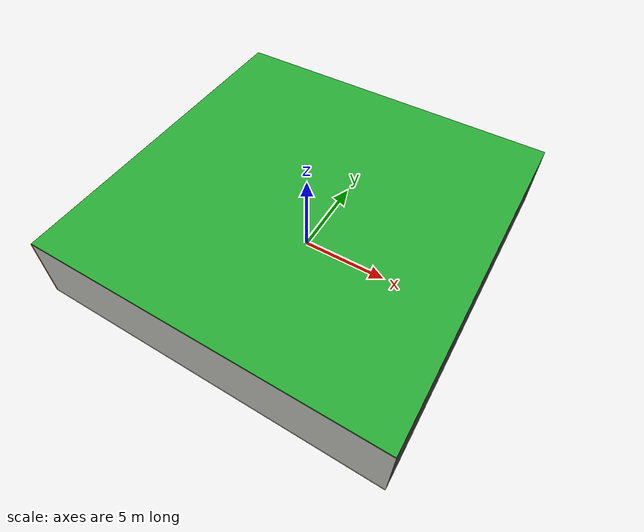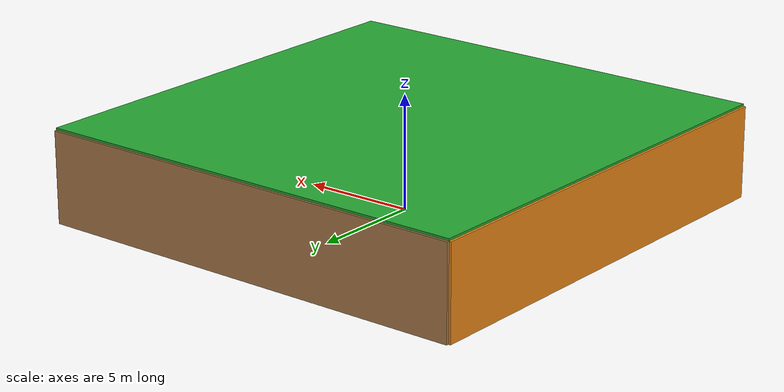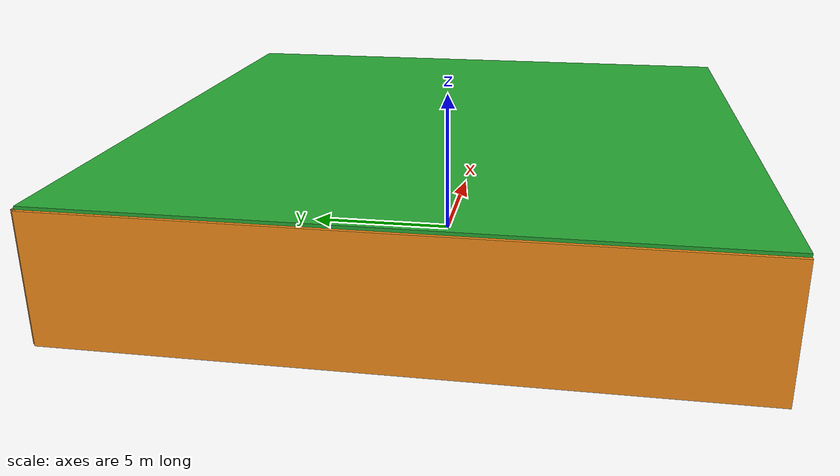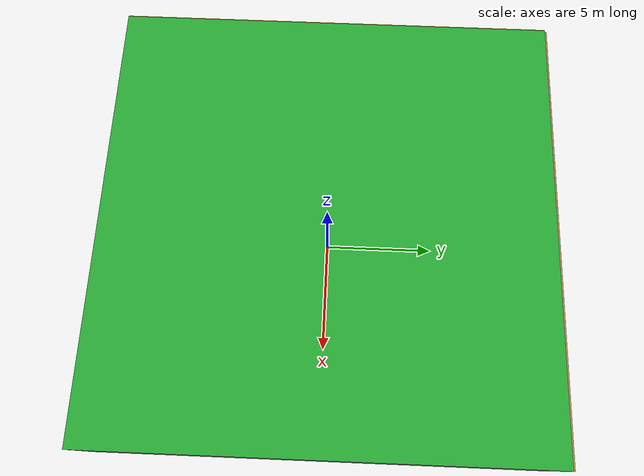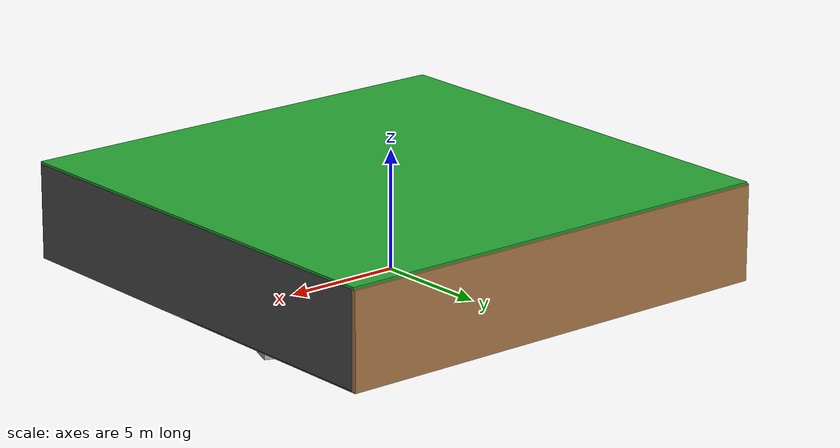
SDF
<sdf version="1.4">
 <world name="default">
  <physics type="ode">
   <max_step_size>0.001</max_step_size>
   <real_time_factor>1</real_time_factor>
   <real_time_update_rate>1000</real_time_update_rate>
   <gravity>0 0 -9.8</gravity>
  </physics>
  <scene><ambient>0.4 0.4 0.4 1</ambient><background>0.7 0.7 0.7 1</background><shadows>1</shadows></scene>
  <model name="Surrounding">
   <static>1</static>
   <link name="Ceiling">
    <collision name="Ceiling_Collision"><geometry><box><size>20 20 0.1</size></box></geometry></collision>
    <visual name="Ceiling_Visual">
     <geometry><box><size>20 20 0.1</size></box></geometry>
     <material>
      <script><uri>file://media/materials/scripts/gazebo.material</uri><name>Gazebo/GreenGlow</name></script>
     </material>
    </visual>
    <pose>0 0 4.05 0 0 0</pose>
   </link>
   <link name="Wall_South">
    <collision name="Wall_South_Collision">
     <geometry><box><size>20 0 4</size></box></geometry>
     <pose>0 0 2 0 -0 0</pose>
    </collision>
    <visual name="Wall_South_Visual">
     <pose>0 0 2 0 -0 0</pose>
     <geometry><box><size>20 0 4</size></box></geometry>
     <material>
      <script><uri>file://media/materials/scripts/gazebo.material</uri><name>Gazebo/CeilingTiled</name></script>
     </material>
    </visual>
    <velocity_decay><linear>0</linear><angular>0</angular></velocity_decay>
    <pose>0 -10 0 0 -0 0</pose>
   </link>
   <link name="Wall_East">
    <collision name="Wall_21_Collision">
     <geometry><box><size>20 0 4</size></box></geometry>
     <pose>0 0 2 0 -0 0</pose>
    </collision>
    <visual name="Wall_21_Visual">
     <pose>0 0 2 0 -0 0</pose>
     <geometry><box><size>20 0 4</size></box></geometry>
     <material>
      <script><uri>file://media/materials/scripts/gazebo.material</uri><name>Gazebo/Road</name></script>
     </material>
    </visual>
    <velocity_decay><linear>0</linear><angular>0</angular></velocity_decay>
    <pose>10 0 0 0 -0 1.5708</pose>
   </link>
   <link name="Wall_North">
    <collision name="Wall_22_Collision">
     <geometry><box><size>20 0.2 4</size></box></geometry>
     <pose>0 0 2 0 -0 0</pose>
    </collision>
    <visual name="Wall_22_Visual">
     <pose>0 0 2 0 -0 0</pose>
     <geometry><box><size>20 0.2 4</size></box></geometry>
     <material>
      <script><uri>file://media/materials/scripts/gazebo.material</uri><name>Gazebo/WoodPallet</name></script>
     </material>
    </visual>
    <velocity_decay><linear>0</linear><angular>0</angular></velocity_decay>
    <pose>0 10 0 0 -0 0</pose>
   </link>
   <link name="Wall_West">
    <collision name="Wall_23_Collision">
     <geometry><box><size>20 0.2 4</size></box></geometry>
     <pose>0 0 2 0 -0 0</pose>
    </collision>
    <visual name="Wall_23_Visual">
     <pose>0 0 2 0 -0 0</pose>
     <geometry><box><size>20 0.2 4</size></box></geometry>
     <material>
      <script><uri>file://media/materials/scripts/gazebo.material</uri><name>Gazebo/Orange</name></script>
     </material>
    </visual>
    <velocity_decay><linear>0</linear><angular>0</angular></velocity_decay>
    <pose>-10 0 0 0 0 -1.5708</pose>
   </link>
   <link name="Ground_link">
    <collision name="collision">
     <pose>0 0 .05 0 -0 0</pose>
     <geometry><box><size>20 20 0.1</size></box></geometry>
    </collision>
    <visual name="visual">
     <pose>0 0 .05 0 -0 0</pose>
     <geometry><box><size>20 20 0.1</size></box></geometry>
     <material>
      <script><uri>file://media/materials/scripts/gazebo.material</uri><name>Gazebo/FlatBlack</name></script>
     </material>
    </visual>
   </link>
   <static>1</static>
  </model>
  <spherical_coordinates>
   <surface_model>EARTH_WGS84</surface_model>
   <latitude_deg>0</latitude_deg>
   <longitude_deg>0</longitude_deg>
   <elevation>0</elevation>
   <heading_deg>0</heading_deg>
  </spherical_coordinates>
  <light name="lightball_0" type="diffuse">
   <diffuse>0.8 0.8 0.8 1</diffuse>
   <specular>0.2 0.2 0.2 1</specular>
   <attenuation>
    <range>100</range>
    <constant>0.7</constant>
    <linear>0.01</linear>
    <quadratic>0.001</quadratic>
   </attenuation>
   <direction>-0.5 0.1 -0.9</direction>
   <pose>7.10441100045 8.45511533731 2.55093289825 0 0 0</pose>
  </light>
  <light name="lightball_1" type="diffuse">
   <diffuse>0.8 0.8 0.8 1</diffuse>
   <specular>0.2 0.2 0.2 1</specular>
   <attenuation>
    <range>100</range>
    <constant>0.7</constant>
    <linear>0.01</linear>
    <quadratic>0.001</quadratic>
   </attenuation>
   <direction>-0.5 0.1 -0.9</direction>
   <pose>5.89136797551 -1.19104381316 3.70082188202 0 0 0</pose>
  </light>
  <light name="lightball_2" type="diffuse">
   <diffuse>0.8 0.8 0.8 1</diffuse>
   <specular>0.2 0.2 0.2 1</specular>
   <attenuation>
    <range>100</range>
    <constant>0.7</constant>
    <linear>0.01</linear>
    <quadratic>0.001</quadratic>
   </attenuation>
   <direction>-0.5 0.1 -0.9</direction>
   <pose>-8.34110937953 -6.08091323969 1.89336852425 0 0 0</pose>
  </light>
  <light name="lightball_3" type="diffuse">
   <diffuse>0.8 0.8 0.8 1</diffuse>
   <specular>0.2 0.2 0.2 1</specular>
   <attenuation>
    <range>100</range>
    <constant>0.7</constant>
    <linear>0.01</linear>
    <quadratic>0.001</quadratic>
   </attenuation>
   <direction>-0.5 0.1 -0.9</direction>
   <pose>3.40712826576 2.36410393262 3.67691673831 0 0 0</pose>
  </light>
  <light name="lightball_4" type="diffuse">
   <diffuse>0.8 0.8 0.8 1</diffuse>
   <specular>0.2 0.2 0.2 1</specular>
   <attenuation>
    <range>100</range>
    <constant>0.7</constant>
    <linear>0.01</linear>
    <quadratic>0.001</quadratic>
   </attenuation>
   <direction>-0.5 0.1 -0.9</direction>
   <pose>1.19657197249 7.47247339856 0.547287005917 0 0 0</pose>
  </light>
  <light name="lightball_5" type="diffuse">
   <diffuse>0.8 0.8 0.8 1</diffuse>
   <specular>0.2 0.2 0.2 1</specular>
   <attenuation>
    <range>100</range>
    <constant>0.7</constant>
    <linear>0.01</linear>
    <quadratic>0.001</quadratic>
   </attenuation>
   <direction>-0.5 0.1 -0.9</direction>
   <pose>7.40875147786 8.36434833558 2.95930534745 0 0 0</pose>
  </light>
  <light name="lightball_6" type="diffuse">
   <diffuse>0.8 0.8 0.8 1</diffuse>
   <specular>0.2 0.2 0.2 1</specular>
   <attenuation>
    <range>100</range>
    <constant>0.7</constant>
    <linear>0.01</linear>
    <quadratic>0.001</quadratic>
   </attenuation>
   <direction>-0.5 0.1 -0.9</direction>
   <pose>9.23463635037 -9.32865494741 2.54124375304 0 0 0</pose>
  </light>
  <light name="lightball_7" type="diffuse">
   <diffuse>0.8 0.8 0.8 1</diffuse>
   <specular>0.2 0.2 0.2 1</specular>
   <attenuation>
    <range>100</range>
    <constant>0.7</constant>
    <linear>0.01</linear>
    <quadratic>0.001</quadratic>
   </attenuation>
   <direction>-0.5 0.1 -0.9</direction>
   <pose>-0.786305189285 -8.80445557308 0.623256483625 0 0 0</pose>
  </light>
  <light name="lightball_8" type="diffuse">
   <diffuse>0.8 0.8 0.8 1</diffuse>
   <specular>0.2 0.2 0.2 1</specular>
   <attenuation>
    <range>100</range>
    <constant>0.7</constant>
    <linear>0.01</linear>
    <quadratic>0.001</quadratic>
   </attenuation>
   <direction>-0.5 0.1 -0.9</direction>
   <pose>-5.37941928056 1.20386737908 2.10223907229 0 0 0</pose>
  </light>
  <light name="lightball_9" type="diffuse">
   <diffuse>0.8 0.8 0.8 1</diffuse>
   <specular>0.2 0.2 0.2 1</specular>
   <attenuation>
    <range>100</range>
    <constant>0.7</constant>
    <linear>0.01</linear>
    <quadratic>0.001</quadratic>
   </attenuation>
   <direction>-0.5 0.1 -0.9</direction>
   <pose>8.35695335625 2.2211120813 2.338716791 0 0 0</pose>
  </light>
  <light name="lightball_10" type="diffuse">
   <diffuse>0.8 0.8 0.8 1</diffuse>
   <specular>0.2 0.2 0.2 1</specular>
   <attenuation>
    <range>100</range>
    <constant>0.7</constant>
    <linear>0.01</linear>
    <quadratic>0.001</quadratic>
   </attenuation>
   <direction>-0.5 0.1 -0.9</direction>
   <pose>-0.330920466076 0.0974242265875 1.61388066779 0 0 0</pose>
  </light>
  <include>
   <uri>model://construction_cone</uri>
   <pose>-5.42476454268 8.62033507167 0 0 0 0.40537235495</pose>
  </include>
  <include><uri>model://cabinet</uri><pose>-1.20101431341 -1.85810341811 0 0 0 0.64573838881</pose></include>
  <include>
   <uri>model://construction_cone</uri>
   <pose>-2.29751486407 4.18244783968 0 0 0 0.835754402326</pose>
  </include>
  <include><uri>model://table</uri><pose>2.32146297147 -2.25285586774 0 0 0 0.951927723339</pose></include>
  <include><uri>model://cabinet</uri><pose>3.7601997842 -5.39536682649 0 0 0 1.08320581812</pose></include>
  <include>
   <uri>model://textured_shapes</uri>
   <pose>8.39394677694 2.36237133264 0 0 0 2.78595013781</pose>
  </include>
 </world>
</sdf>

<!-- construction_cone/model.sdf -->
<sdf version="1.5">
  <model name="Construction Cone">
    <link name="link">
      <collision name="collision">
        <geometry>
          <mesh>
            <scale>10 10 10</scale>
            <uri>file://isr-testbed/construction_cone/meshes/construction_cone.dae</uri>
          </mesh>
        </geometry>
      </collision>
      <visual name="visual">
        <geometry>
          <mesh>
            <scale>10 10 10</scale>
            <uri>file://isr-testbed/construction_cone/meshes/construction_cone.dae</uri>
          </mesh>
        </geometry>
      </visual>
    </link>
  </model>
</sdf>

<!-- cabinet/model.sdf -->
<sdf version="1.5">
  <model name="cabinet">
    <static>true</static>
    <link name="cabinet_bottom_plate">
      <inertial>
        <pose>0 0 -1 0 0 0</pose>
        <inertia>
          <ixx>2.050000</ixx>
          <ixy>0</ixy>
          <ixz>0</ixz>
          <iyy>2.050000</iyy>
          <iyz>0</iyz>
          <izz>2.050000</izz>
        </inertia>
        <mass>25.000000</mass>
      </inertial>
      <collision name="cabinet_bottom_plate_geom">
        <pose>0 0 0.010000 0 0 0</pose>
        <geometry>
          <box>
            <size>0.450000 0.450000 0.020000</size>
          </box>
        </geometry>
      </collision>
      <visual name="cabinet_bottom_plate_geom_visual">
        <pose>0 0 0.010000 0 0 0</pose>
        <geometry>
          <box>
            <size>0.450000 0.450000 0.020000</size>
          </box>
        </geometry>
        <material>
          <script>
            <uri>model://media/materials/scripts/gazebo.material</uri>
            <name>Gazebo/Wood</name>
          </script>
        </material>
      </visual>
      <collision name="cabinet_bottom_plate_geom_cabinet_back_plate">
        <pose>0.235000 0 0.510000 0 0 0</pose>
        <geometry>
          <box>
            <size>0.020000 0.450000 1.020000</size>
          </box>
        </geometry>
      </collision>
      <visual name="cabinet_bottom_plate_geom_cabinet_back_plate_visual">
        <pose>0.235000 0 0.510000 0 0 0</pose>
        <geometry>
          <box>
            <size>0.020000 0.450000 1.020000</size>
          </box>
        </geometry>
        <material>
          <script>
            <uri>model://media/materials/scripts/gazebo.material</uri>
            <name>Gazebo/Wood</name>
          </script>
        </material>
      </visual>
      <collision name="cabinet_bottom_plate_geom_cabinet_left_plate">
        <pose>0 0.235000 0.510000 0 0 0</pose>
        <geometry>
          <box>
            <size>0.450000 0.020000 1.020000</size>
          </box>
        </geometry>
      </collision>
      <visual name="cabinet_bottom_plate_geom_cabinet_left_plate_visual">
        <pose>0 0.235000 0.510000 0 0 0</pose>
        <geometry>
          <box>
            <size>0.450000 0.020000 1.020000</size>
          </box>
        </geometry>
        <material>
          <script>
            <uri>model://media/materials/scripts/gazebo.material</uri>
            <name>Gazebo/Wood</name>
          </script>
        </material>
      </visual>
      <collision name="cabinet_bottom_plate_geom_cabinet_middle_plate">
        <pose>0 0 0.510000 0 0 0</pose>
        <geometry>
          <box>
            <size>0.450000 0.450000 0.020000</size>
          </box>
        </geometry>
      </collision>
      <visual name="cabinet_bottom_plate_geom_cabinet_middle_plate_visual">
        <pose>0 0 0.510000 0 0 0</pose>
        <geometry>
          <box>
            <size>0.450000 0.450000 0.020000</size>
          </box>
        </geometry>
        <material>
          <script>
            <uri>model://media/materials/scripts/gazebo.material</uri>
            <name>Gazebo/Wood</name>
          </script>
        </material>
      </visual>
      <collision name="cabinet_bottom_plate_geom_cabinet_right_plate">
        <pose>0 -0.235000 0.510000 0 0 0</pose>
        <geometry>
          <box>
            <size>0.450000 0.020000 1.020000</size>
          </box>
        </geometry>
      </collision>
      <visual name="cabinet_bottom_plate_geom_cabinet_right_plate_visual">
        <pose>0 -0.235000 0.510000 0 0 0</pose>
        <geometry>
          <box>
            <size>0.450000 0.020000 1.020000</size>
          </box>
        </geometry>
        <material>
          <script>
            <uri>model://media/materials/scripts/gazebo.material</uri>
            <name>Gazebo/Wood</name>
          </script>
        </material>
      </visual>
      <collision name="cabinet_bottom_plate_geom_cabinet_top_plate">
        <pose>0 0 1.010000 0 0 0</pose>
        <geometry>
          <box>
            <size>0.450000 0.450000 0.020000</size>
          </box>
        </geometry>
      </collision>
      <visual name="cabinet_bottom_plate_geom_cabinet_top_plate_visual">
        <pose>0 0 1.010000 0 0 0</pose>
        <geometry>
          <box>
            <size>0.450000 0.450000 0.020000</size>
          </box>
        </geometry>
        <material>
          <script>
            <uri>model://media/materials/scripts/gazebo.material</uri>
            <name>Gazebo/Wood</name>
          </script>
        </material>
      </visual>
    </link>
  </model>
</sdf>

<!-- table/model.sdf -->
<sdf version="1.5">
  <model name="table">
    <static>true</static>
    <link name="link">
      <collision name="surface">
        <pose>0 0 1.0 0 0 0</pose>
        <geometry>
          <box>
            <size>1.5 0.8 0.03</size>
          </box>
        </geometry>
        <surface>
          <friction>
            <ode>
              <mu>0.6</mu>
              <mu2>0.6</mu2>
            </ode>
          </friction>
        </surface>
      </collision>
      <visual name="visual1">
        <pose>0 0 1.0 0 0 0</pose>
        <geometry>
          <box>
            <size>1.5 0.8 0.03</size>
          </box>
        </geometry>
        <material>
          <script>
            <uri>model://media/materials/scripts/gazebo.material</uri>
            <name>Gazebo/Wood</name>
          </script>
        </material>
      </visual>
      <collision name="front_left_leg">
        <pose>0.68 0.38 0.5 0 0 0</pose>
        <geometry>
          <cylinder>
            <radius>0.02</radius>
            <length>1.0</length>
          </cylinder>
        </geometry>
      </collision>
      <visual name="front_left_leg">
        <pose>0.68 0.38 0.5 0 0 0</pose>
        <geometry>
          <cylinder>
            <radius>0.02</radius>
            <length>1.0</length>
          </cylinder>
        </geometry>
        <material>
          <script>
            <uri>model://media/materials/scripts/gazebo.material</uri>
            <name>Gazebo/Grey</name>
          </script>
        </material>
      </visual>
      <collision name="front_right_leg">
        <pose>0.68 -0.38 0.5 0 0 0</pose>
        <geometry>
          <cylinder>
            <radius>0.02</radius>
            <length>1.0</length>
          </cylinder>
        </geometry>
      </collision>
      <visual name="front_right_leg">
        <pose>0.68 -0.38 0.5 0 0 0</pose>
        <geometry>
          <cylinder>
            <radius>0.02</radius>
            <length>1.0</length>
          </cylinder>
        </geometry>
        <material>
          <script>
            <uri>model://media/materials/scripts/gazebo.material</uri>
            <name>Gazebo/Grey</name>
          </script>
        </material>
      </visual>
      <collision name="back_right_leg">
        <pose>-0.68 -0.38 0.5 0 0 0</pose>
        <geometry>
          <cylinder>
            <radius>0.02</radius>
            <length>1.0</length>
          </cylinder>
        </geometry>
      </collision>
      <visual name="back_right_leg">
        <pose>-0.68 -0.38 0.5 0 0 0</pose>
        <geometry>
          <cylinder>
            <radius>0.02</radius>
            <length>1.0</length>
          </cylinder>
        </geometry>
        <material>
          <script>
            <uri>model://media/materials/scripts/gazebo.material</uri>
            <name>Gazebo/Grey</name>
          </script>
        </material>
      </visual>
      <collision name="back_left_leg">
        <pose>-0.68 0.38 0.5 0 0 0</pose>
        <geometry>
          <cylinder>
            <radius>0.02</radius>
            <length>1.0</length>
          </cylinder>
        </geometry>
      </collision>
      <visual name="back_left_leg">
        <pose>-0.68 0.38 0.5 0 0 0</pose>
        <geometry>
          <cylinder>
            <radius>0.02</radius>
            <length>1.0</length>
          </cylinder>
        </geometry>
        <material>
          <script>
            <uri>model://media/materials/scripts/gazebo.material</uri>
            <name>Gazebo/Grey</name>
          </script>
        </material>
      </visual>
    </link>
  </model>
</sdf>

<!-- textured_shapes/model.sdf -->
<sdf version="1.6">
  <model name="textured_shapes">
    <pose>0 0 0.5 0 0 0</pose>
    <link name="box">
      <pose>0 -1.5 0 0 0 0</pose>
      <collision name="collision">
        <geometry>
          <box>
            <size>1 1 1</size>
          </box>
        </geometry>
      </collision>
      <visual name="visual">
        <geometry>
          <box>
            <size>1 1 1</size>
          </box>
        </geometry>
        <material>
          <script>
            <uri>model://../model_source/models/textured_shapes/materials/scripts</uri>
            <uri>model://../model_source/models/textured_shapes/materials/textures</uri>
            <name>TexturedShape/Squares</name>
          </script>
        </material>
      </visual>
    </link>
    <link name="sphere">
      <collision name="collision">
        <geometry>
          <sphere>
            <radius>0.5</radius>
          </sphere>
        </geometry>
      </collision>
      <visual name="visual">
        <geometry>
          <sphere>
            <radius>0.5</radius>
          </sphere>
        </geometry>
        <material>
          <script>
            <uri>model://../model_source/models/textured_shapes/materials/scripts</uri>
            <uri>model://../model_source/models/textured_shapes/materials/textures</uri>
            <name>TexturedShape/Squares</name>
          </script>
        </material>
      </visual>
    </link>
    <link name="cylinder">
      <pose>0 1.5 0 0 0 0</pose>
      <collision name="collision">
        <geometry>
          <cylinder>
            <radius>0.5</radius>
            <length>1</length>
          </cylinder>
        </geometry>
      </collision>
      <visual name="visual">
        <geometry>
          <cylinder>
            <radius>0.5</radius>
            <length>1</length>
          </cylinder>
        </geometry>
        <material>
          <script>
            <uri>model://../model_source/models/textured_shapes/materials/scripts</uri>
            <uri>model://../model_source/models/textured_shapes/materials/textures</uri>
            <name>TexturedShape/Squares</name>
          </script>
        </material>
      </visual>
    </link>
  </model>
</sdf>
